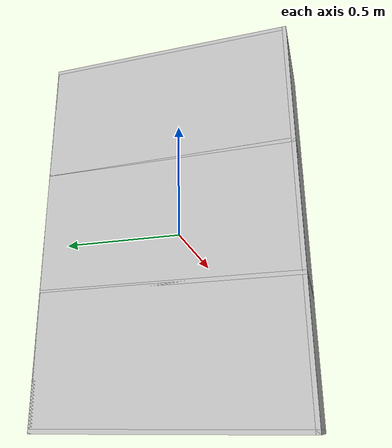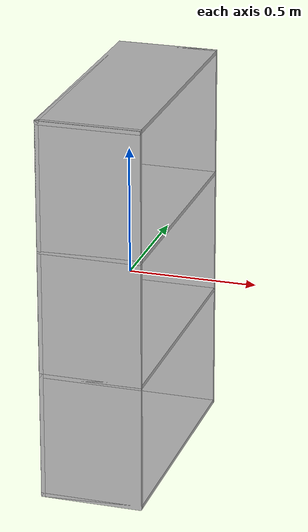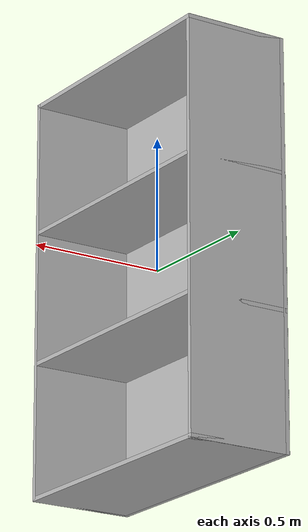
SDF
<?xml version="1.0"?>
<sdf version="1.7">
  <model name="shelve">
    <link name="shelve_body">

      <visual name="right_wall">

        <pose> 0 0.492 0 0 0 0</pose>
        <geometry>
          <box>
            <size>0.4 0.016 1.516</size>
          </box>
        </geometry>

      </visual>
     <collision name="right_wall">

        <pose> 0 0.492 0 0 0 0</pose>
        <geometry>
          <box>
            <size>0.4 0.016 1.516</size>
          </box>
        </geometry>

      </collision>

      <visual name="left_wall">

        <pose> 0 -0.492 0 0 0 0</pose>
        <geometry>
          <box>
            <size>0.4 0.016 1.516</size>
          </box>
        </geometry>

      </visual>
     <collision name="left_wall">

        <pose> 0 -0.492 0 0 0 0</pose>
        <geometry>
          <box>
            <size>0.4 0.016 1.516</size>
          </box>
        </geometry>

      </collision>

          <visual name="floor0">

        <pose> 0 0 -0.75 0 0 0</pose>
        <geometry>
          <box>
            <size>0.4 1 0.016</size>
          </box>
        </geometry>

          </visual>
          <collision name="floor0">

        <pose> 0 0 -0.75 0 0 0</pose>
        <geometry>
          <box>
            <size>0.4 1 0.016</size>
          </box>
        </geometry>

          </collision>

          <visual name="floor1">

        <pose> 0 0 -0.25 0 0 0</pose>
        <geometry>
          <box>
            <size>0.4 1 0.016</size>
          </box>
        </geometry>

          </visual>
          <collision name="floor1">

        <pose> 0 0 -0.25 0 0 0</pose>
        <geometry>
          <box>
            <size>0.4 1 0.016</size>
          </box>
        </geometry>

          </collision>

          <visual name="floor2">

        <pose> 0 0 0.25 0 0 0</pose>
        <geometry>
          <box>
            <size>0.4 1 0.016</size>
          </box>
        </geometry>

          </visual>
          <collision name="floor2">

        <pose> 0 0 0.25 0 0 0</pose>
        <geometry>
          <box>
            <size>0.4 1 0.016</size>
          </box>
        </geometry>

          </collision>

          <visual name="floor3">

        <pose> 0 0 0.75 0 0 0</pose>
        <geometry>
          <box>
            <size>0.4 1 0.016</size>
          </box>
        </geometry>

          </visual>
          <collision name="floor3">

        <pose> 0 0 0.75 0 0 0</pose>
        <geometry>
          <box>
            <size>0.4 1 0.016</size>
          </box>
        </geometry>

          </collision>

      <visual name="back">

        <pose> -0.192 0 0 0 0 0</pose>
        <geometry>
          <box>
            <size>0.016 1 1.516</size>
          </box>
        </geometry>

      </visual>
     <collision name="back">

        <pose> -0.192 0 0 0 0 0</pose>
        <geometry>
          <box>
            <size>0.016 1 1.516</size>
          </box>
        </geometry>

      </collision>

    </link>
  </model>
</sdf>
